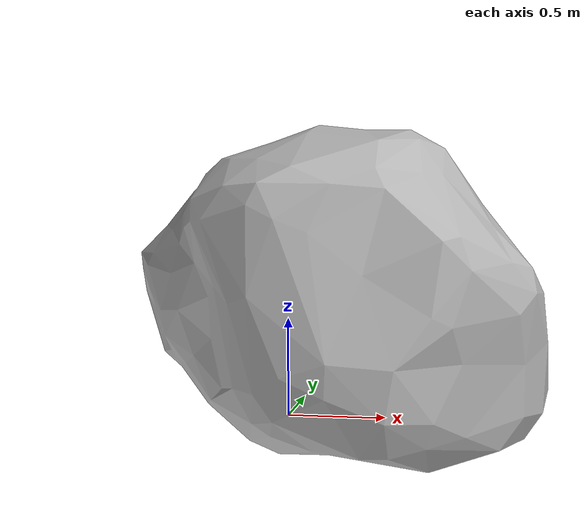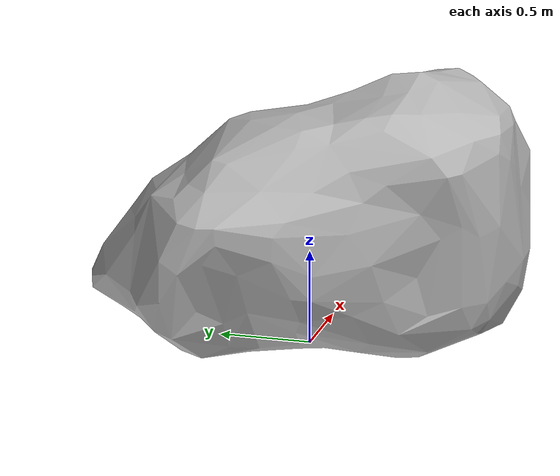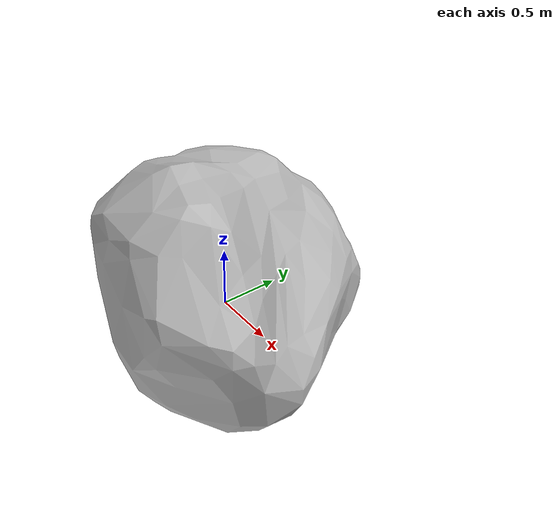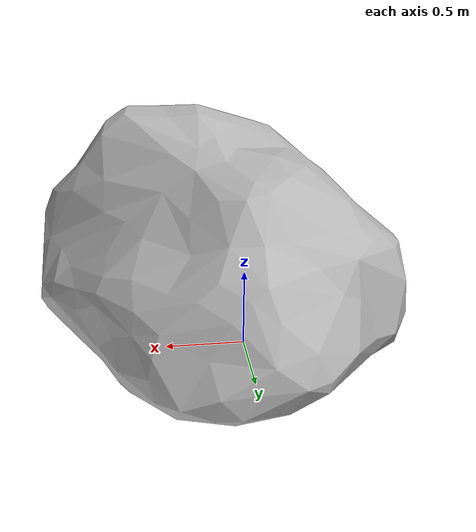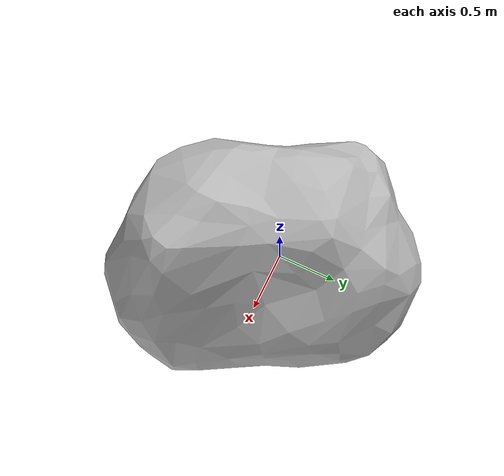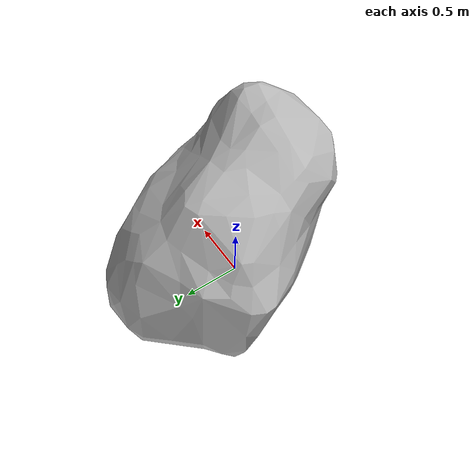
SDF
<?xml version='1.0'?>
<sdf version='1.4'>
  <model name="stone_1">
    <static>true</static>
    <pose>0 0 0 0 0 0</pose>

    <link name="stone_1">
      <visual name="stone_1">
        <geometry>
          <mesh>
            <uri>model://stone_1/stone_1.dae</uri>
          </mesh>
        </geometry>s
      </visual>
      <collision name="stone_1">
        <geometry>
          <mesh>
            <uri>model://stone_1/stone_1.dae</uri>
          </mesh>
        </geometry>
      </collision>
    </link>

  </model>
</sdf>
